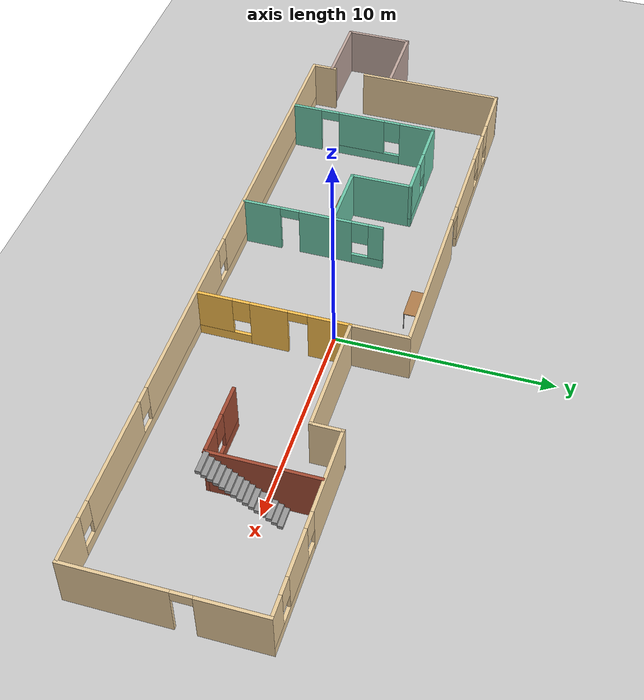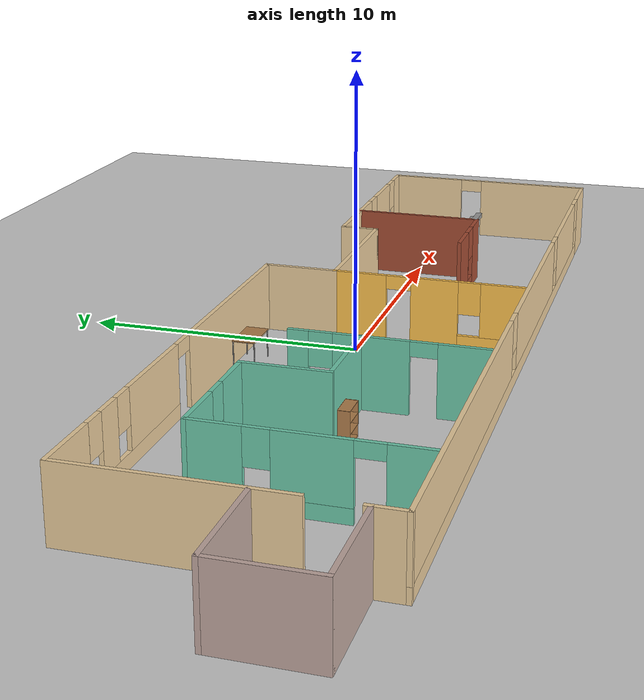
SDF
<sdf version="1.6">
 <world name="default">
  <model name="ground_plane">
   <static>1</static>
   <link name="link">
    <collision name="collision">
     <geometry><plane><normal>0 0 1</normal><size>100 100</size></plane></geometry>
     <surface>
      <contact><collide_bitmask>65535</collide_bitmask></contact>
      <friction><ode><mu>100</mu><mu2>50</mu2></ode></friction>
     </surface>
    </collision>
    <visual name="visual">
     <cast_shadows>0</cast_shadows>
     <geometry><plane><normal>0 0 1</normal><size>100 100</size></plane></geometry>
     <material>
      <script><uri>file://media/materials/scripts/gazebo.material</uri><name>Gazebo/Grey</name></script>
     </material>
    </visual>
   </link>
  </model>
  <model name="MyHome">
   <pose>-1.79948 -1.08916 0 0 -0 0</pose>
   <link name="Stairs_0">
    <visual name="Stairs_0_Visual_0">
     <pose>11.657 1.99996 0.083333 0 -0 0</pose>
     <geometry><box><size>1 0.233333 0.166667</size></box></geometry>
     <material>
      <script><uri>file://media/materials/scripts/gazebo.material</uri><name>Gazebo/Grey</name></script>
      <ambient>1 1 1 1</ambient>
     </material>
     <meta><layer>0</layer></meta>
    </visual>
    <collision name="Stairs_0_Collision_0">
     <geometry><box><size>1 0.233333 0.166667</size></box></geometry>
     <pose>11.657 1.99996 0.083333 0 -0 0</pose>
    </collision>
    <visual name="Stairs_0_Visual_1">
     <pose>11.657 1.76663 0.25 0 -0 0</pose>
     <geometry><box><size>1 0.233333 0.166667</size></box></geometry>
     <material>
      <script><uri>file://media/materials/scripts/gazebo.material</uri><name>Gazebo/Grey</name></script>
      <ambient>1 1 1 1</ambient>
     </material>
     <meta><layer>0</layer></meta>
    </visual>
    <collision name="Stairs_0_Collision_1">
     <geometry><box><size>1 0.233333 0.166667</size></box></geometry>
     <pose>11.657 1.76663 0.25 0 -0 0</pose>
    </collision>
    <visual name="Stairs_0_Visual_2">
     <pose>11.657 1.5333 0.416667 0 -0 0</pose>
     <geometry><box><size>1 0.233333 0.166667</size></box></geometry>
     <material>
      <script><uri>file://media/materials/scripts/gazebo.material</uri><name>Gazebo/Grey</name></script>
      <ambient>1 1 1 1</ambient>
     </material>
     <meta><layer>0</layer></meta>
    </visual>
    <collision name="Stairs_0_Collision_2">
     <geometry><box><size>1 0.233333 0.166667</size></box></geometry>
     <pose>11.657 1.5333 0.416667 0 -0 0</pose>
    </collision>
    <visual name="Stairs_0_Visual_3">
     <pose>11.657 1.29996 0.583333 0 -0 0</pose>
     <geometry><box><size>1 0.233333 0.166667</size></box></geometry>
     <material>
      <script><uri>file://media/materials/scripts/gazebo.material</uri><name>Gazebo/Grey</name></script>
      <ambient>1 1 1 1</ambient>
     </material>
     <meta><layer>0</layer></meta>
    </visual>
    <collision name="Stairs_0_Collision_3">
     <geometry><box><size>1 0.233333 0.166667</size></box></geometry>
     <pose>11.657 1.29996 0.583333 0 -0 0</pose>
    </collision>
    <visual name="Stairs_0_Visual_4">
     <pose>11.657 1.06663 0.75 0 -0 0</pose>
     <geometry><box><size>1 0.233333 0.166667</size></box></geometry>
     <material>
      <script><uri>file://media/materials/scripts/gazebo.material</uri><name>Gazebo/Grey</name></script>
      <ambient>1 1 1 1</ambient>
     </material>
     <meta><layer>0</layer></meta>
    </visual>
    <collision name="Stairs_0_Collision_4">
     <geometry><box><size>1 0.233333 0.166667</size></box></geometry>
     <pose>11.657 1.06663 0.75 0 -0 0</pose>
    </collision>
    <visual name="Stairs_0_Visual_5">
     <pose>11.657 0.833295 0.916667 0 -0 0</pose>
     <geometry><box><size>1 0.233333 0.166667</size></box></geometry>
     <material>
      <script><uri>file://media/materials/scripts/gazebo.material</uri><name>Gazebo/Grey</name></script>
      <ambient>1 1 1 1</ambient>
     </material>
     <meta><layer>0</layer></meta>
    </visual>
    <collision name="Stairs_0_Collision_5">
     <geometry><box><size>1 0.233333 0.166667</size></box></geometry>
     <pose>11.657 0.833295 0.916667 0 -0 0</pose>
    </collision>
    <visual name="Stairs_0_Visual_6">
     <pose>11.657 0.599962 1.08333 0 -0 0</pose>
     <geometry><box><size>1 0.233333 0.166667</size></box></geometry>
     <material>
      <script><uri>file://media/materials/scripts/gazebo.material</uri><name>Gazebo/Grey</name></script>
      <ambient>1 1 1 1</ambient>
     </material>
     <meta><layer>0</layer></meta>
    </visual>
    <collision name="Stairs_0_Collision_6">
     <geometry><box><size>1 0.233333 0.166667</size></box></geometry>
     <pose>11.657 0.599962 1.08333 0 -0 0</pose>
    </collision>
    <visual name="Stairs_0_Visual_7">
     <pose>11.657 0.366628 1.25 0 -0 0</pose>
     <geometry><box><size>1 0.233333 0.166667</size></box></geometry>
     <material>
      <script><uri>file://media/materials/scripts/gazebo.material</uri><name>Gazebo/Grey</name></script>
      <ambient>1 1 1 1</ambient>
     </material>
     <meta><layer>0</layer></meta>
    </visual>
    <collision name="Stairs_0_Collision_7">
     <geometry><box><size>1 0.233333 0.166667</size></box></geometry>
     <pose>11.657 0.366628 1.25 0 -0 0</pose>
    </collision>
    <visual name="Stairs_0_Visual_8">
     <pose>11.657 0.133295 1.41667 0 -0 0</pose>
     <geometry><box><size>1 0.233333 0.166667</size></box></geometry>
     <material>
      <script><uri>file://media/materials/scripts/gazebo.material</uri><name>Gazebo/Grey</name></script>
      <ambient>1 1 1 1</ambient>
     </material>
     <meta><layer>0</layer></meta>
    </visual>
    <collision name="Stairs_0_Collision_8">
     <geometry><box><size>1 0.233333 0.166667</size></box></geometry>
     <pose>11.657 0.133295 1.41667 0 -0 0</pose>
    </collision>
    <visual name="Stairs_0_Visual_9">
     <pose>11.657 -0.100039 1.58333 0 -0 0</pose>
     <geometry><box><size>1 0.233333 0.166667</size></box></geometry>
     <material>
      <script><uri>file://media/materials/scripts/gazebo.material</uri><name>Gazebo/Grey</name></script>
      <ambient>1 1 1 1</ambient>
     </material>
     <meta><layer>0</layer></meta>
    </visual>
    <collision name="Stairs_0_Collision_9">
     <geometry><box><size>1 0.233333 0.166667</size></box></geometry>
     <pose>11.657 -0.100039 1.58333 0 -0 0</pose>
    </collision>
    <visual name="Stairs_0_Visual_10">
     <pose>11.657 -0.333372 1.75 0 -0 0</pose>
     <geometry><box><size>1 0.233333 0.166667</size></box></geometry>
     <material>
      <script><uri>file://media/materials/scripts/gazebo.material</uri><name>Gazebo/Grey</name></script>
      <ambient>1 1 1 1</ambient>
     </material>
     <meta><layer>0</layer></meta>
    </visual>
    <collision name="Stairs_0_Collision_10">
     <geometry><box><size>1 0.233333 0.166667</size></box></geometry>
     <pose>11.657 -0.333372 1.75 0 -0 0</pose>
    </collision>
    <visual name="Stairs_0_Visual_11">
     <pose>11.657 -0.566705 1.91667 0 -0 0</pose>
     <geometry><box><size>1 0.233333 0.166667</size></box></geometry>
     <material>
      <script><uri>file://media/materials/scripts/gazebo.material</uri><name>Gazebo/Grey</name></script>
      <ambient>1 1 1 1</ambient>
     </material>
     <meta><layer>0</layer></meta>
    </visual>
    <collision name="Stairs_0_Collision_11">
     <geometry><box><size>1 0.233333 0.166667</size></box></geometry>
     <pose>11.657 -0.566705 1.91667 0 -0 0</pose>
    </collision>
    <visual name="Stairs_0_Visual_12">
     <pose>11.657 -0.800039 2.08333 0 -0 0</pose>
     <geometry><box><size>1 0.233333 0.166667</size></box></geometry>
     <material>
      <script><uri>file://media/materials/scripts/gazebo.material</uri><name>Gazebo/Grey</name></script>
      <ambient>1 1 1 1</ambient>
     </material>
     <meta><layer>0</layer></meta>
    </visual>
    <collision name="Stairs_0_Collision_12">
     <geometry><box><size>1 0.233333 0.166667</size></box></geometry>
     <pose>11.657 -0.800039 2.08333 0 -0 0</pose>
    </collision>
    <visual name="Stairs_0_Visual_13">
     <pose>11.657 -1.03337 2.25 0 -0 0</pose>
     <geometry><box><size>1 0.233333 0.166667</size></box></geometry>
     <material>
      <script><uri>file://media/materials/scripts/gazebo.material</uri><name>Gazebo/Grey</name></script>
      <ambient>1 1 1 1</ambient>
     </material>
     <meta><layer>0</layer></meta>
    </visual>
    <collision name="Stairs_0_Collision_13">
     <geometry><box><size>1 0.233333 0.166667</size></box></geometry>
     <pose>11.657 -1.03337 2.25 0 -0 0</pose>
    </collision>
    <visual name="Stairs_0_Visual_14">
     <pose>11.657 -1.2667 2.41667 0 -0 0</pose>
     <geometry><box><size>1 0.233333 0.166667</size></box></geometry>
     <material>
      <script><uri>file://media/materials/scripts/gazebo.material</uri><name>Gazebo/Grey</name></script>
      <ambient>1 1 1 1</ambient>
     </material>
     <meta><layer>0</layer></meta>
    </visual>
    <collision name="Stairs_0_Collision_14">
     <geometry><box><size>1 0.233333 0.166667</size></box></geometry>
     <pose>11.657 -1.2667 2.41667 0 -0 0</pose>
    </collision>
   </link>
   <link name="Wall_0">
    <collision name="Wall_0_Collision">
     <geometry><box><size>7 0.15 2.5</size></box></geometry>
     <pose>0 0 1.25 0 -0 0</pose>
    </collision>
    <visual name="Wall_0_Visual">
     <pose>0 0 1.25 0 -0 0</pose>
     <geometry><box><size>7 0.15 2.5</size></box></geometry>
     <material>
      <script><uri>file://media/materials/scripts/gazebo.material</uri><name>Gazebo/Grey</name></script>
      <ambient>0.921569 0.807843 0.615686 1</ambient>
     </material>
     <meta><layer>0</layer></meta>
    </visual>
    <pose>-14.0694 1.375 0 0 -0 1.5708</pose>
   </link>
   <link name="Wall_1">
    <pose>-5.51941 4.8 0 0 -0 0</pose>
    <visual name="Wall_1_Visual_0">
     <pose>-7.41094 0 1.25 0 -0 0</pose>
     <geometry><box><size>2.42812 0.15 2.5</size></box></geometry>
     <material>
      <script><uri>file://media/materials/scripts/gazebo.material</uri><name>Gazebo/Grey</name></script>
      <ambient>0.921569 0.807843 0.615686 1</ambient>
     </material>
     <meta><layer>0</layer></meta>
    </visual>
    <collision name="Wall_1_Collision_0">
     <geometry><box><size>2.42812 0.15 2.5</size></box></geometry>
     <pose>-7.41094 0 1.25 0 -0 0</pose>
    </collision>
    <visual name="Wall_1_Visual_1">
     <pose>4.75926 0 1.25 0 -0 0</pose>
     <geometry><box><size>7.73147 0.15 2.5</size></box></geometry>
     <material>
      <script><uri>file://media/materials/scripts/gazebo.material</uri><name>Gazebo/Grey</name></script>
      <ambient>0.921569 0.807843 0.615686 1</ambient>
     </material>
     <meta><layer>0</layer></meta>
    </visual>
    <collision name="Wall_1_Collision_1">
     <geometry><box><size>7.73147 0.15 2.5</size></box></geometry>
     <pose>4.75926 0 1.25 0 -0 0</pose>
    </collision>
    <visual name="Wall_1_Visual_2">
     <pose>-3.10168 0 0.25 0 -0 0</pose>
     <geometry><box><size>6.19041 0.15 0.5</size></box></geometry>
     <material>
      <script><uri>file://media/materials/scripts/gazebo.material</uri><name>Gazebo/Grey</name></script>
      <ambient>0.921569 0.807843 0.615686 1</ambient>
     </material>
     <meta><layer>0</layer></meta>
    </visual>
    <collision name="Wall_1_Collision_2">
     <geometry><box><size>6.19041 0.15 0.5</size></box></geometry>
     <pose>-3.10168 0 0.25 0 -0 0</pose>
    </collision>
    <visual name="Wall_1_Visual_3">
     <pose>-4.89447 0 1.5 0 -0 0</pose>
     <geometry><box><size>1.00482 0.15 2</size></box></geometry>
     <material>
      <script><uri>file://media/materials/scripts/gazebo.material</uri><name>Gazebo/Grey</name></script>
      <ambient>0.921569 0.807843 0.615686 1</ambient>
     </material>
     <meta><layer>0</layer></meta>
    </visual>
    <collision name="Wall_1_Collision_3">
     <geometry><box><size>1.00482 0.15 2</size></box></geometry>
     <pose>-4.89447 0 1.5 0 -0 0</pose>
    </collision>
    <visual name="Wall_1_Visual_4">
     <pose>-1.79926 0 1.5 0 -0 0</pose>
     <geometry><box><size>3.58558 0.15 2</size></box></geometry>
     <material>
      <script><uri>file://media/materials/scripts/gazebo.material</uri><name>Gazebo/Grey</name></script>
      <ambient>0.921569 0.807843 0.615686 1</ambient>
     </material>
     <meta><layer>0</layer></meta>
    </visual>
    <collision name="Wall_1_Collision_4">
     <geometry><box><size>3.58558 0.15 2</size></box></geometry>
     <pose>-1.79926 0 1.5 0 -0 0</pose>
    </collision>
    <visual name="Wall_1_Visual_5">
     <pose>-5.79688 0 1.9 0 -0 0</pose>
     <geometry><box><size>0.8 0.15 1.2</size></box></geometry>
     <material>
      <script><uri>file://media/materials/scripts/gazebo.material</uri><name>Gazebo/Grey</name></script>
      <ambient>0.921569 0.807843 0.615686 1</ambient>
     </material>
     <meta><layer>0</layer></meta>
    </visual>
    <collision name="Wall_1_Collision_5">
     <geometry><box><size>0.8 0.15 1.2</size></box></geometry>
     <pose>-5.79688 0 1.9 0 -0 0</pose>
    </collision>
    <visual name="Wall_1_Visual_6">
     <pose>-3.99206 0 1.9 0 -0 0</pose>
     <geometry><box><size>0.8 0.15 1.2</size></box></geometry>
     <material>
      <script><uri>file://media/materials/scripts/gazebo.material</uri><name>Gazebo/Grey</name></script>
      <ambient>0.921569 0.807843 0.615686 1</ambient>
     </material>
     <meta><layer>0</layer></meta>
    </visual>
    <collision name="Wall_1_Collision_6">
     <geometry><box><size>0.8 0.15 1.2</size></box></geometry>
     <pose>-3.99206 0 1.9 0 -0 0</pose>
    </collision>
    <visual name="Wall_1_Visual_7">
     <pose>0.443527 0 2.25 0 -0 0</pose>
     <geometry><box><size>0.9 0.15 0.5</size></box></geometry>
     <material>
      <script><uri>file://media/materials/scripts/gazebo.material</uri><name>Gazebo/Grey</name></script>
      <ambient>0.921569 0.807843 0.615686 1</ambient>
     </material>
     <meta><layer>0</layer></meta>
    </visual>
    <collision name="Wall_1_Collision_7">
     <geometry><box><size>0.9 0.15 0.5</size></box></geometry>
     <pose>0.443527 0 2.25 0 -0 0</pose>
    </collision>
   </link>
   <link name="Wall_10">
    <pose>-10.6739 -1.16442 0 0 0 -1.5708</pose>
    <visual name="Wall_10_Visual_0">
     <pose>-2.74743 0 1.25 0 -0 0</pose>
     <geometry><box><size>1.75513 0.15 2.5</size></box></geometry>
     <material>
      <script><uri>file://media/materials/scripts/gazebo.material</uri><name>Gazebo/Grey</name></script>
      <ambient>0.435294 0.796078 0.67451 1</ambient>
     </material>
     <meta><layer>0</layer></meta>
    </visual>
    <collision name="Wall_10_Collision_0">
     <geometry><box><size>1.75513 0.15 2.5</size></box></geometry>
     <pose>-2.74743 0 1.25 0 -0 0</pose>
    </collision>
    <visual name="Wall_10_Visual_1">
     <pose>2.89326 0 1.25 0 -0 0</pose>
     <geometry><box><size>1.46348 0.15 2.5</size></box></geometry>
     <material>
      <script><uri>file://media/materials/scripts/gazebo.material</uri><name>Gazebo/Grey</name></script>
      <ambient>0.435294 0.796078 0.67451 1</ambient>
     </material>
     <meta><layer>0</layer></meta>
    </visual>
    <collision name="Wall_10_Collision_1">
     <geometry><box><size>1.46348 0.15 2.5</size></box></geometry>
     <pose>2.89326 0 1.25 0 -0 0</pose>
    </collision>
    <visual name="Wall_10_Visual_2">
     <pose>-0.304173 0 0.25 0 -0 0</pose>
     <geometry><box><size>3.13138 0.15 0.5</size></box></geometry>
     <material>
      <script><uri>file://media/materials/scripts/gazebo.material</uri><name>Gazebo/Grey</name></script>
      <ambient>0.435294 0.796078 0.67451 1</ambient>
     </material>
     <meta><layer>0</layer></meta>
    </visual>
    <collision name="Wall_10_Collision_2">
     <geometry><box><size>3.13138 0.15 0.5</size></box></geometry>
     <pose>-0.304173 0 0.25 0 -0 0</pose>
    </collision>
    <visual name="Wall_10_Visual_3">
     <pose>0.095827 0 1.5 0 -0 0</pose>
     <geometry><box><size>2.33138 0.15 2</size></box></geometry>
     <material>
      <script><uri>file://media/materials/scripts/gazebo.material</uri><name>Gazebo/Grey</name></script>
      <ambient>0.435294 0.796078 0.67451 1</ambient>
     </material>
     <meta><layer>0</layer></meta>
    </visual>
    <collision name="Wall_10_Collision_3">
     <geometry><box><size>2.33138 0.15 2</size></box></geometry>
     <pose>0.095827 0 1.5 0 -0 0</pose>
    </collision>
    <visual name="Wall_10_Visual_4">
     <pose>-1.46986 0 1.9 0 -0 0</pose>
     <geometry><box><size>0.8 0.15 1.2</size></box></geometry>
     <material>
      <script><uri>file://media/materials/scripts/gazebo.material</uri><name>Gazebo/Grey</name></script>
      <ambient>0.435294 0.796078 0.67451 1</ambient>
     </material>
     <meta><layer>0</layer></meta>
    </visual>
    <collision name="Wall_10_Collision_4">
     <geometry><box><size>0.8 0.15 1.2</size></box></geometry>
     <pose>-1.46986 0 1.9 0 -0 0</pose>
    </collision>
    <visual name="Wall_10_Visual_5">
     <pose>1.71152 0 2.25 0 -0 0</pose>
     <geometry><box><size>0.9 0.15 0.5</size></box></geometry>
     <material>
      <script><uri>file://media/materials/scripts/gazebo.material</uri><name>Gazebo/Grey</name></script>
      <ambient>0.435294 0.796078 0.67451 1</ambient>
     </material>
     <meta><layer>0</layer></meta>
    </visual>
    <collision name="Wall_10_Collision_5">
     <geometry><box><size>0.9 0.15 0.5</size></box></geometry>
     <pose>1.71152 0 2.25 0 -0 0</pose>
    </collision>
   </link>
   <link name="Wall_12">
    <pose>-3.17929 -1.44194 0 0 -0 1.5708</pose>
    <visual name="Wall_12_Visual_0">
     <pose>-2.46125 0 1.25 0 -0 0</pose>
     <geometry><box><size>1.8275 0.15 2.5</size></box></geometry>
     <material>
      <script><uri>file://media/materials/scripts/gazebo.material</uri><name>Gazebo/Grey</name></script>
      <ambient>0.435294 0.796078 0.67451 1</ambient>
     </material>
     <meta><layer>0</layer></meta>
    </visual>
    <collision name="Wall_12_Collision_0">
     <geometry><box><size>1.8275 0.15 2.5</size></box></geometry>
     <pose>-2.46125 0 1.25 0 -0 0</pose>
    </collision>
    <visual name="Wall_12_Visual_1">
     <pose>0.609959 0 1.25 0 -0 0</pose>
     <geometry><box><size>2.51492 0.15 2.5</size></box></geometry>
     <material>
      <script><uri>file://media/materials/scripts/gazebo.material</uri><name>Gazebo/Grey</name></script>
      <ambient>0.435294 0.796078 0.67451 1</ambient>
     </material>
     <meta><layer>0</layer></meta>
    </visual>
    <collision name="Wall_12_Collision_1">
     <geometry><box><size>2.51492 0.15 2.5</size></box></geometry>
     <pose>0.609959 0 1.25 0 -0 0</pose>
    </collision>
    <visual name="Wall_12_Visual_2">
     <pose>2.62121 0 0.25 0 -0 0</pose>
     <geometry><box><size>1.50758 0.15 0.5</size></box></geometry>
     <material>
      <script><uri>file://media/materials/scripts/gazebo.material</uri><name>Gazebo/Grey</name></script>
      <ambient>0.435294 0.796078 0.67451 1</ambient>
     </material>
     <meta><layer>0</layer></meta>
    </visual>
    <collision name="Wall_12_Collision_2">
     <geometry><box><size>1.50758 0.15 0.5</size></box></geometry>
     <pose>2.62121 0 0.25 0 -0 0</pose>
    </collision>
    <visual name="Wall_12_Visual_3">
     <pose>3.02121 0 1.5 0 -0 0</pose>
     <geometry><box><size>0.707578 0.15 2</size></box></geometry>
     <material>
      <script><uri>file://media/materials/scripts/gazebo.material</uri><name>Gazebo/Grey</name></script>
      <ambient>0.435294 0.796078 0.67451 1</ambient>
     </material>
     <meta><layer>0</layer></meta>
    </visual>
    <collision name="Wall_12_Collision_3">
     <geometry><box><size>0.707578 0.15 2</size></box></geometry>
     <pose>3.02121 0 1.5 0 -0 0</pose>
    </collision>
    <visual name="Wall_12_Visual_4">
     <pose>2.26742 0 1.9 0 -0 0</pose>
     <geometry><box><size>0.8 0.15 1.2</size></box></geometry>
     <material>
      <script><uri>file://media/materials/scripts/gazebo.material</uri><name>Gazebo/Grey</name></script>
      <ambient>0.435294 0.796078 0.67451 1</ambient>
     </material>
     <meta><layer>0</layer></meta>
    </visual>
    <collision name="Wall_12_Collision_4">
     <geometry><box><size>0.8 0.15 1.2</size></box></geometry>
     <pose>2.26742 0 1.9 0 -0 0</pose>
    </collision>
    <visual name="Wall_12_Visual_5">
     <pose>-1.0975 0 2.25 0 -0 0</pose>
     <geometry><box><size>0.9 0.15 0.5</size></box></geometry>
     <material>
      <script><uri>file://media/materials/scripts/gazebo.material</uri><name>Gazebo/Grey</name></script>
      <ambient>0.435294 0.796078 0.67451 1</ambient>
     </material>
     <meta><layer>0</layer></meta>
    </visual>
    <collision name="Wall_12_Collision_5">
     <geometry><box><size>0.9 0.15 0.5</size></box></geometry>
     <pose>-1.0975 0 2.25 0 -0 0</pose>
    </collision>
   </link>
   <link name="Wall_14">
    <pose>3.03059 -1.225 0 0 0 -1.5708</pose>
    <visual name="Wall_14_Visual_0">
     <pose>-2.5108 0 1.25 0 -0 0</pose>
     <geometry><box><size>1.97841 0.15 2.5</size></box></geometry>
     <material>
      <script><uri>file://media/materials/scripts/gazebo.material</uri><name>Gazebo/Grey</name></script>
      <ambient>1 0.764706 0.305882 1</ambient>
     </material>
     <meta><layer>0</layer></meta>
    </visual>
    <collision name="Wall_14_Collision_0">
     <geometry><box><size>1.97841 0.15 2.5</size></box></geometry>
     <pose>-2.5108 0 1.25 0 -0 0</pose>
    </collision>
    <visual name="Wall_14_Visual_1">
     <pose>0.238195 0 1.25 0 -0 0</pose>
     <geometry><box><size>1.71958 0.15 2.5</size></box></geometry>
     <material>
      <script><uri>file://media/materials/scripts/gazebo.material</uri><name>Gazebo/Grey</name></script>
      <ambient>1 0.764706 0.305882 1</ambient>
     </material>
     <meta><layer>0</layer></meta>
    </visual>
    <collision name="Wall_14_Collision_1">
     <geometry><box><size>1.71958 0.15 2.5</size></box></geometry>
     <pose>0.238195 0 1.25 0 -0 0</pose>
    </collision>
    <visual name="Wall_14_Visual_2">
     <pose>2.29899 0 0.25 0 -0 0</pose>
     <geometry><box><size>2.40202 0.15 0.5</size></box></geometry>
     <material>
      <script><uri>file://media/materials/scripts/gazebo.material</uri><name>Gazebo/Grey</name></script>
      <ambient>1 0.764706 0.305882 1</ambient>
     </material>
     <meta><layer>0</layer></meta>
    </visual>
    <collision name="Wall_14_Collision_2">
     <geometry><box><size>2.40202 0.15 0.5</size></box></geometry>
     <pose>2.29899 0 0.25 0 -0 0</pose>
    </collision>
    <visual name="Wall_14_Visual_3">
     <pose>2.69899 0 1.5 0 -0 0</pose>
     <geometry><box><size>1.60201 0.15 2</size></box></geometry>
     <material>
      <script><uri>file://media/materials/scripts/gazebo.material</uri><name>Gazebo/Grey</name></script>
      <ambient>1 0.764706 0.305882 1</ambient>
     </material>
     <meta><layer>0</layer></meta>
    </visual>
    <collision name="Wall_14_Collision_3">
     <geometry><box><size>1.60201 0.15 2</size></box></geometry>
     <pose>2.69899 0 1.5 0 -0 0</pose>
    </collision>
    <visual name="Wall_14_Visual_4">
     <pose>1.49798 0 1.9 0 -0 0</pose>
     <geometry><box><size>0.8 0.15 1.2</size></box></geometry>
     <material>
      <script><uri>file://media/materials/scripts/gazebo.material</uri><name>Gazebo/Grey</name></script>
      <ambient>1 0.764706 0.305882 1</ambient>
     </material>
     <meta><layer>0</layer></meta>
    </visual>
    <collision name="Wall_14_Collision_4">
     <geometry><box><size>0.8 0.15 1.2</size></box></geometry>
     <pose>1.49798 0 1.9 0 -0 0</pose>
    </collision>
    <visual name="Wall_14_Visual_5">
     <pose>-1.07159 0 2.25 0 -0 0</pose>
     <geometry><box><size>0.9 0.15 0.5</size></box></geometry>
     <material>
      <script><uri>file://media/materials/scripts/gazebo.material</uri><name>Gazebo/Grey</name></script>
      <ambient>1 0.764706 0.305882 1</ambient>
     </material>
     <meta><layer>0</layer></meta>
    </visual>
    <collision name="Wall_14_Collision_5">
     <geometry><box><size>0.9 0.15 0.5</size></box></geometry>
     <pose>-1.07159 0 2.25 0 -0 0</pose>
    </collision>
   </link>
   <link name="Wall_16">
    <collision name="Wall_16_Collision">
     <geometry><box><size>5 0.15 2.5</size></box></geometry>
     <pose>0 0 1.25 0 -0 0</pose>
    </collision>
    <visual name="Wall_16_Visual">
     <pose>0 0 1.25 0 -0 0</pose>
     <geometry><box><size>5 0.15 2.5</size></box></geometry>
     <material>
      <script><uri>file://media/materials/scripts/gazebo.material</uri><name>Gazebo/Bricks</name></script>
      <ambient>1 1 1 1</ambient>
     </material>
     <meta><layer>0</layer></meta>
    </visual>
    <pose>11.1369 1.06183 0 0 0 -1.5708</pose>
   </link>
   <link name="Wall_17">
    <pose>9.46194 -1.36317 0 0 -0 3.14159</pose>
    <visual name="Wall_17_Visual_0">
     <pose>-1.14774 0 1.25 0 -0 0</pose>
     <geometry><box><size>1.20451 0.15 2.5</size></box></geometry>
     <material>
      <script><uri>file://media/materials/scripts/gazebo.material</uri><name>Gazebo/Bricks</name></script>
      <ambient>1 1 1 1</ambient>
     </material>
     <meta><layer>0</layer></meta>
    </visual>
    <collision name="Wall_17_Collision_0">
     <geometry><box><size>1.20451 0.15 2.5</size></box></geometry>
     <pose>-1.14774 0 1.25 0 -0 0</pose>
    </collision>
    <visual name="Wall_17_Visual_1">
     <pose>0.602256 0 0.25 0 -0 0</pose>
     <geometry><box><size>2.29549 0.15 0.5</size></box></geometry>
     <material>
      <script><uri>file://media/materials/scripts/gazebo.material</uri><name>Gazebo/Bricks</name></script>
      <ambient>1 1 1 1</ambient>
     </material>
     <meta><layer>0</layer></meta>
    </visual>
    <collision name="Wall_17_Collision_1">
     <geometry><box><size>2.29549 0.15 0.5</size></box></geometry>
     <pose>0.602256 0 0.25 0 -0 0</pose>
    </collision>
    <visual name="Wall_17_Visual_2">
     <pose>1.00226 0 1.5 0 -0 0</pose>
     <geometry><box><size>1.49549 0.15 2</size></box></geometry>
     <material>
      <script><uri>file://media/materials/scripts/gazebo.material</uri><name>Gazebo/Bricks</name></script>
      <ambient>1 1 1 1</ambient>
     </material>
     <meta><layer>0</layer></meta>
    </visual>
    <collision name="Wall_17_Collision_2">
     <geometry><box><size>1.49549 0.15 2</size></box></geometry>
     <pose>1.00226 0 1.5 0 -0 0</pose>
    </collision>
    <visual name="Wall_17_Visual_3">
     <pose>-0.145489 0 1.9 0 -0 0</pose>
     <geometry><box><size>0.8 0.15 1.2</size></box></geometry>
     <material>
      <script><uri>file://media/materials/scripts/gazebo.material</uri><name>Gazebo/Bricks</name></script>
      <ambient>1 1 1 1</ambient>
     </material>
     <meta><layer>0</layer></meta>
    </visual>
    <collision name="Wall_17_Collision_3">
     <geometry><box><size>0.8 0.15 1.2</size></box></geometry>
     <pose>-0.145489 0 1.9 0 -0 0</pose>
    </collision>
   </link>
   <link name="Wall_2">
    <collision name="Wall_2_Collision">
     <geometry><box><size>2.75 0.15 2.5</size></box></geometry>
     <pose>0 0 1.25 0 -0 0</pose>
    </collision>
    <visual name="Wall_2_Visual">
     <pose>0 0 1.25 0 -0 0</pose>
     <geometry><box><size>2.75 0.15 2.5</size></box></geometry>
     <material>
      <script><uri>file://media/materials/scripts/gazebo.material</uri><name>Gazebo/Grey</name></script>
      <ambient>0.921569 0.807843 0.615686 1</ambient>
     </material>
     <meta><layer>0</layer></meta>
    </visual>
    <pose>3.03059 3.5 0 0 0 -1.5708</pose>
   </link>
   <link name="Wall_21">
    <pose>-8.49889 2.38558 0 0 -0 0</pose>
    <visual name="Wall_21_Visual_0">
     <pose>-1.25007 0 1.25 0 -0 0</pose>
     <geometry><box><size>1.99986 0.15 2.5</size></box></geometry>
     <material>
      <script><uri>file://media/materials/scripts/gazebo.material</uri><name>Gazebo/Grey</name></script>
      <ambient>0.435294 0.796078 0.67451 1</ambient>
     </material>
     <meta><layer>0</layer></meta>
    </visual>
    <collision name="Wall_21_Collision_0">
     <geometry><box><size>1.99986 0.15 2.5</size></box></geometry>
     <pose>-1.25007 0 1.25 0 -0 0</pose>
    </collision>
    <visual name="Wall_21_Visual_1">
     <pose>0.999928 0 0.25 0 -0 0</pose>
     <geometry><box><size>2.50014 0.15 0.5</size></box></geometry>
     <material>
      <script><uri>file://media/materials/scripts/gazebo.material</uri><name>Gazebo/Grey</name></script>
      <ambient>0.435294 0.796078 0.67451 1</ambient>
     </material>
     <meta><layer>0</layer></meta>
    </visual>
    <collision name="Wall_21_Collision_1">
     <geometry><box><size>2.50014 0.15 0.5</size></box></geometry>
     <pose>0.999928 0 0.25 0 -0 0</pose>
    </collision>
    <visual name="Wall_21_Visual_2">
     <pose>1.39993 0 1.5 0 -0 0</pose>
     <geometry><box><size>1.70014 0.15 2</size></box></geometry>
     <material>
      <script><uri>file://media/materials/scripts/gazebo.material</uri><name>Gazebo/Grey</name></script>
      <ambient>0.435294 0.796078 0.67451 1</ambient>
     </material>
     <meta><layer>0</layer></meta>
    </visual>
    <collision name="Wall_21_Collision_2">
     <geometry><box><size>1.70014 0.15 2</size></box></geometry>
     <pose>1.39993 0 1.5 0 -0 0</pose>
    </collision>
    <visual name="Wall_21_Visual_3">
     <pose>0.149857 0 1.9 0 -0 0</pose>
     <geometry><box><size>0.8 0.15 1.2</size></box></geometry>
     <material>
      <script><uri>file://media/materials/scripts/gazebo.material</uri><name>Gazebo/Grey</name></script>
      <ambient>0.435294 0.796078 0.67451 1</ambient>
     </material>
     <meta><layer>0</layer></meta>
    </visual>
    <collision name="Wall_21_Collision_3">
     <geometry><box><size>0.8 0.15 1.2</size></box></geometry>
     <pose>0.149857 0 1.9 0 -0 0</pose>
    </collision>
   </link>
   <link name="Wall_22">
    <collision name="Wall_22_Collision">
     <geometry><box><size>3 0.15 2.5</size></box></geometry>
     <pose>0 0 1.25 0 -0 0</pose>
    </collision>
    <visual name="Wall_22_Visual">
     <pose>0 0 1.25 0 -0 0</pose>
     <geometry><box><size>3 0.15 2.5</size></box></geometry>
     <material>
      <script><uri>file://media/materials/scripts/gazebo.material</uri><name>Gazebo/Grey</name></script>
      <ambient>0.435294 0.796078 0.67451 1</ambient>
     </material>
     <meta><layer>0</layer></meta>
    </visual>
    <pose>-6.3239 0.960583 0 0 0 -1.5708</pose>
   </link>
   <link name="Wall_23">
    <collision name="Wall_23_Collision">
     <geometry><box><size>3.25 0.15 2.5</size></box></geometry>
     <pose>0 0 1.25 0 -0 0</pose>
    </collision>
    <visual name="Wall_23_Visual">
     <pose>0 0 1.25 0 -0 0</pose>
     <geometry><box><size>3.25 0.15 2.5</size></box></geometry>
     <material>
      <script><uri>file://media/materials/scripts/gazebo.material</uri><name>Gazebo/Grey</name></script>
      <ambient>0.435294 0.796078 0.67451 1</ambient>
     </material>
     <meta><layer>0</layer></meta>
    </visual>
    <pose>-4.7739 -0.464417 0 0 -0 0</pose>
   </link>
   <link name="Wall_25">
    <collision name="Wall_25_Collision">
     <geometry><box><size>3.5 0.15 2.5</size></box></geometry>
     <pose>0 0 1.25 0 -0 0</pose>
    </collision>
    <visual name="Wall_25_Visual">
     <pose>0 0 1.25 0 -0 0</pose>
     <geometry><box><size>3.5 0.15 2.5</size></box></geometry>
     <material>
      <script><uri>file://media/materials/scripts/gazebo.material</uri><name>Gazebo/Grey</name></script>
      <ambient>0.760784 0.662745 0.627451 1</ambient>
     </material>
     <meta><layer>0</layer></meta>
    </visual>
    <pose>-15.8056 -0.73462 0 0 -0 3.14159</pose>
   </link>
   <link name="Wall_26">
    <collision name="Wall_26_Collision">
     <geometry><box><size>3.25 0.15 2.5</size></box></geometry>
     <pose>0 0 1.25 0 -0 0</pose>
    </collision>
    <visual name="Wall_26_Visual">
     <pose>0 0 1.25 0 -0 0</pose>
     <geometry><box><size>3.25 0.15 2.5</size></box></geometry>
     <material>
      <script><uri>file://media/materials/scripts/gazebo.material</uri><name>Gazebo/Grey</name></script>
      <ambient>0.760784 0.662745 0.627451 1</ambient>
     </material>
     <meta><layer>0</layer></meta>
    </visual>
    <pose>-17.4806 -2.28462 0 0 0 -1.5708</pose>
   </link>
   <link name="Wall_27">
    <collision name="Wall_27_Collision">
     <geometry><box><size>3.5 0.15 2.5</size></box></geometry>
     <pose>0 0 1.25 0 -0 0</pose>
    </collision>
    <visual name="Wall_27_Visual">
     <pose>0 0 1.25 0 -0 0</pose>
     <geometry><box><size>3.5 0.15 2.5</size></box></geometry>
     <material>
      <script><uri>file://media/materials/scripts/gazebo.material</uri><name>Gazebo/Grey</name></script>
      <ambient>0.760784 0.662745 0.627451 1</ambient>
     </material>
     <meta><layer>0</layer></meta>
    </visual>
    <pose>-15.8056 -3.83462 0 0 -0 0</pose>
   </link>
   <link name="Wall_3">
    <collision name="Wall_3_Collision">
     <geometry><box><size>5.75 0.15 2.5</size></box></geometry>
     <pose>0 0 1.25 0 -0 0</pose>
    </collision>
    <visual name="Wall_3_Visual">
     <pose>0 0 1.25 0 -0 0</pose>
     <geometry><box><size>5.75 0.15 2.5</size></box></geometry>
     <material>
      <script><uri>file://media/materials/scripts/gazebo.material</uri><name>Gazebo/Grey</name></script>
      <ambient>0.921569 0.807843 0.615686 1</ambient>
     </material>
     <meta><layer>0</layer></meta>
    </visual>
    <pose>5.83059 2.2 0 0 -0 0</pose>
   </link>
   <link name="Wall_4">
    <collision name="Wall_4_Collision">
     <geometry><box><size>1.5 0.15 2.5</size></box></geometry>
     <pose>0 0 1.25 0 -0 0</pose>
    </collision>
    <visual name="Wall_4_Visual">
     <pose>0 0 1.25 0 -0 0</pose>
     <geometry><box><size>1.5 0.15 2.5</size></box></geometry>
     <material>
      <script><uri>file://media/materials/scripts/gazebo.material</uri><name>Gazebo/Grey</name></script>
      <ambient>0.921569 0.807843 0.615686 1</ambient>
     </material>
     <meta><layer>0</layer></meta>
    </visual>
    <pose>8.63059 2.875 0 0 -0 1.5708</pose>
   </link>
   <link name="Wall_5">
    <pose>13.0556 3.55 0 0 -0 0</pose>
    <visual name="Wall_5_Visual_0">
     <pose>-2.43044 0 1.25 0 -0 0</pose>
     <geometry><box><size>4.13912 0.15 2.5</size></box></geometry>
     <material>
      <script><uri>file://media/materials/scripts/gazebo.material</uri><name>Gazebo/Grey</name></script>
      <ambient>0.921569 0.807843 0.615686 1</ambient>
     </material>
     <meta><layer>0</layer></meta>
    </visual>
    <collision name="Wall_5_Collision_0">
     <geometry><box><size>4.13912 0.15 2.5</size></box></geometry>
     <pose>-2.43044 0 1.25 0 -0 0</pose>
    </collision>
    <visual name="Wall_5_Visual_1">
     <pose>2.06956 0 0.25 0 -0 0</pose>
     <geometry><box><size>4.86088 0.15 0.5</size></box></geometry>
     <material>
      <script><uri>file://media/materials/scripts/gazebo.material</uri><name>Gazebo/Grey</name></script>
      <ambient>0.921569 0.807843 0.615686 1</ambient>
     </material>
     <meta><layer>0</layer></meta>
    </visual>
    <collision name="Wall_5_Collision_1">
     <geometry><box><size>4.86088 0.15 0.5</size></box></geometry>
     <pose>2.06956 0 0.25 0 -0 0</pose>
    </collision>
    <visual name="Wall_5_Visual_2">
     <pose>1.53804 0 1.5 0 -0 0</pose>
     <geometry><box><size>2.19784 0.15 2</size></box></geometry>
     <material>
      <script><uri>file://media/materials/scripts/gazebo.material</uri><name>Gazebo/Grey</name></script>
      <ambient>0.921569 0.807843 0.615686 1</ambient>
     </material>
     <meta><layer>0</layer></meta>
    </visual>
    <collision name="Wall_5_Collision_2">
     <geometry><box><size>2.19784 0.15 2</size></box></geometry>
     <pose>1.53804 0 1.5 0 -0 0</pose>
    </collision>
    <visual name="Wall_5_Visual_3">
     <pose>3.96848 0 1.5 0 -0 0</pose>
     <geometry><box><size>1.06303 0.15 2</size></box></geometry>
     <material>
      <script><uri>file://media/materials/scripts/gazebo.material</uri><name>Gazebo/Grey</name></script>
      <ambient>0.921569 0.807843 0.615686 1</ambient>
     </material>
     <meta><layer>0</layer></meta>
    </visual>
    <collision name="Wall_5_Collision_3">
     <geometry><box><size>1.06303 0.15 2</size></box></geometry>
     <pose>3.96848 0 1.5 0 -0 0</pose>
    </collision>
    <visual name="Wall_5_Visual_4">
     <pose>0.039123 0 1.9 0 -0 0</pose>
     <geometry><box><size>0.8 0.15 1.2</size></box></geometry>
     <material>
      <script><uri>file://media/materials/scripts/gazebo.material</uri><name>Gazebo/Grey</name></script>
      <ambient>0.921569 0.807843 0.615686 1</ambient>
     </material>
     <meta><layer>0</layer></meta>
    </visual>
    <collision name="Wall_5_Collision_4">
     <geometry><box><size>0.8 0.15 1.2</size></box></geometry>
     <pose>0.039123 0 1.9 0 -0 0</pose>
    </collision>
    <visual name="Wall_5_Visual_5">
     <pose>3.03696 0 1.9 0 -0 0</pose>
     <geometry><box><size>0.8 0.15 1.2</size></box></geometry>
     <material>
      <script><uri>file://media/materials/scripts/gazebo.material</uri><name>Gazebo/Grey</name></script>
      <ambient>0.921569 0.807843 0.615686 1</ambient>
     </material>
     <meta><layer>0</layer></meta>
    </visual>
    <collision name="Wall_5_Collision_5">
     <geometry><box><size>0.8 0.15 1.2</size></box></geometry>
     <pose>3.03696 0 1.9 0 -0 0</pose>
    </collision>
   </link>
   <link name="Wall_6">
    <pose>17.4806 -0.625 0 0 0 -1.5708</pose>
    <visual name="Wall_6_Visual_0">
     <pose>-2.72345 0 1.25 0 -0 0</pose>
     <geometry><box><size>3.05309 0.15 2.5</size></box></geometry>
     <material>
      <script><uri>file://media/materials/scripts/gazebo.material</uri><name>Gazebo/Grey</name></script>
      <ambient>0.921569 0.807843 0.615686 1</ambient>
     </material>
     <meta><layer>0</layer></meta>
    </visual>
    <collision name="Wall_6_Collision_0">
     <geometry><box><size>3.05309 0.15 2.5</size></box></geometry>
     <pose>-2.72345 0 1.25 0 -0 0</pose>
    </collision>
    <visual name="Wall_6_Visual_1">
     <pose>1.97655 0 1.25 0 -0 0</pose>
     <geometry><box><size>4.54691 0.15 2.5</size></box></geometry>
     <material>
      <script><uri>file://media/materials/scripts/gazebo.material</uri><name>Gazebo/Grey</name></script>
      <ambient>0.921569 0.807843 0.615686 1</ambient>
     </material>
     <meta><layer>0</layer></meta>
    </visual>
    <collision name="Wall_6_Collision_1">
     <geometry><box><size>4.54691 0.15 2.5</size></box></geometry>
     <pose>1.97655 0 1.25 0 -0 0</pose>
    </collision>
    <visual name="Wall_6_Visual_2">
     <pose>-0.746906 0 2.25 0 -0 0</pose>
     <geometry><box><size>0.9 0.15 0.5</size></box></geometry>
     <material>
      <script><uri>file://media/materials/scripts/gazebo.material</uri><name>Gazebo/Grey</name></script>
      <ambient>0.921569 0.807843 0.615686 1</ambient>
     </material>
     <meta><layer>0</layer></meta>
    </visual>
    <collision name="Wall_6_Collision_2">
     <geometry><box><size>0.9 0.15 0.5</size></box></geometry>
     <pose>-0.746906 0 2.25 0 -0 0</pose>
    </collision>
   </link>
   <link name="Wall_7">
    <pose>1.68059 -4.8 0 0 -0 3.14159</pose>
    <visual name="Wall_7_Visual_0">
     <pose>-14.8234 0 1.25 0 -0 0</pose>
     <geometry><box><size>2.1031 0.15 2.5</size></box></geometry>
     <material>
      <script><uri>file://media/materials/scripts/gazebo.material</uri><name>Gazebo/Grey</name></script>
      <ambient>0.921569 0.807843 0.615686 1</ambient>
     </material>
     <meta><layer>0</layer></meta>
    </visual>
    <collision name="Wall_7_Collision_0">
     <geometry><box><size>2.1031 0.15 2.5</size></box></geometry>
     <pose>-14.8234 0 1.25 0 -0 0</pose>
    </collision>
    <visual name="Wall_7_Visual_1">
     <pose>1.05155 0 0.25 0 -0 0</pose>
     <geometry><box><size>29.6469 0.15 0.5</size></box></geometry>
     <material>
      <script><uri>file://media/materials/scripts/gazebo.material</uri><name>Gazebo/Grey</name></script>
      <ambient>0.921569 0.807843 0.615686 1</ambient>
     </material>
     <meta><layer>0</layer></meta>
    </visual>
    <collision name="Wall_7_Collision_1">
     <geometry><box><size>29.6469 0.15 0.5</size></box></geometry>
     <pose>1.05155 0 0.25 0 -0 0</pose>
    </collision>
    <visual name="Wall_7_Visual_2">
     <pose>-10.4199 0 1.5 0 -0 0</pose>
     <geometry><box><size>5.10391 0.15 2</size></box></geometry>
     <material>
      <script><uri>file://media/materials/scripts/gazebo.material</uri><name>Gazebo/Grey</name></script>
      <ambient>0.921569 0.807843 0.615686 1</ambient>
     </material>
     <meta><layer>0</layer></meta>
    </visual>
    <collision name="Wall_7_Collision_2">
     <geometry><box><size>5.10391 0.15 2</size></box></geometry>
     <pose>-10.4199 0 1.5 0 -0 0</pose>
    </collision>
    <visual name="Wall_7_Visual_3">
     <pose>-2.86415 0 1.5 0 -0 0</pose>
     <geometry><box><size>8.40766 0.15 2</size></box></geometry>
     <material>
      <script><uri>file://media/materials/scripts/gazebo.material</uri><name>Gazebo/Grey</name></script>
      <ambient>0.921569 0.807843 0.615686 1</ambient>
     </material>
     <meta><layer>0</layer></meta>
    </visual>
    <collision name="Wall_7_Collision_3">
     <geometry><box><size>8.40766 0.15 2</size></box></geometry>
     <pose>-2.86415 0 1.5 0 -0 0</pose>
    </collision>
    <visual name="Wall_7_Visual_4">
     <pose>9.00734 0 1.5 0 -0 0</pose>
     <geometry><box><size>13.7353 0.15 2</size></box></geometry>
     <material>
      <script><uri>file://media/materials/scripts/gazebo.material</uri><name>Gazebo/Grey</name></script>
      <ambient>0.921569 0.807843 0.615686 1</ambient>
     </material>
     <meta><layer>0</layer></meta>
    </visual>
    <collision name="Wall_7_Collision_4">
     <geometry><box><size>13.7353 0.15 2</size></box></geometry>
     <pose>9.00734 0 1.5 0 -0 0</pose>
    </collision>
    <visual name="Wall_7_Visual_5">
     <pose>-13.3719 0 1.9 0 -0 0</pose>
     <geometry><box><size>0.8 0.15 1.2</size></box></geometry>
     <material>
      <script><uri>file://media/materials/scripts/gazebo.material</uri><name>Gazebo/Grey</name></script>
      <ambient>0.921569 0.807843 0.615686 1</ambient>
     </material>
     <meta><layer>0</layer></meta>
    </visual>
    <collision name="Wall_7_Collision_5">
     <geometry><box><size>0.8 0.15 1.2</size></box></geometry>
     <pose>-13.3719 0 1.9 0 -0 0</pose>
    </collision>
    <visual name="Wall_7_Visual_6">
     <pose>-7.46798 0 1.9 0 -0 0</pose>
     <geometry><box><size>0.8 0.15 1.2</size></box></geometry>
     <material>
      <script><uri>file://media/materials/scripts/gazebo.material</uri><name>Gazebo/Grey</name></script>
      <ambient>0.921569 0.807843 0.615686 1</ambient>
     </material>
     <meta><layer>0</layer></meta>
    </visual>
    <collision name="Wall_7_Collision_6">
     <geometry><box><size>0.8 0.15 1.2</size></box></geometry>
     <pose>-7.46798 0 1.9 0 -0 0</pose>
    </collision>
    <visual name="Wall_7_Visual_7">
     <pose>1.73968 0 1.9 0 -0 0</pose>
     <geometry><box><size>0.8 0.15 1.2</size></box></geometry>
     <material>
      <script><uri>file://media/materials/scripts/gazebo.material</uri><name>Gazebo/Grey</name></script>
      <ambient>0.921569 0.807843 0.615686 1</ambient>
     </material>
     <meta><layer>0</layer></meta>
    </visual>
    <collision name="Wall_7_Collision_7">
     <geometry><box><size>0.8 0.15 1.2</size></box></geometry>
     <pose>1.73968 0 1.9 0 -0 0</pose>
    </collision>
   </link>
   <link name="Wall_8">
    <collision name="Wall_8_Collision">
     <geometry><box><size>1.25 0.15 2.5</size></box></geometry>
     <pose>0 0 1.25 0 -0 0</pose>
    </collision>
    <visual name="Wall_8_Visual">
     <pose>0 0 1.25 0 -0 0</pose>
     <geometry><box><size>1.25 0.15 2.5</size></box></geometry>
     <material>
      <script><uri>file://media/materials/scripts/gazebo.material</uri><name>Gazebo/Grey</name></script>
      <ambient>0.921569 0.807843 0.615686 1</ambient>
     </material>
     <meta><layer>0</layer></meta>
    </visual>
    <pose>-14.1194 -4.25 0 0 -0 1.5708</pose>
   </link>
   <static>1</static>
  </model>
  <model name="bookshelf">
   <static>1</static>
   <link name="link">
    <inertial><mass>1</mass></inertial>
    <collision name="back">
     <pose>0 0.005 0.6 0 -0 0</pose>
     <geometry><box><size>0.9 0.01 1.2</size></box></geometry>
    </collision>
    <visual name="visual1">
     <pose>0 0.005 0.6 0 -0 0</pose>
     <geometry><box><size>0.9 0.01 1.2</size></box></geometry>
     <material>
      <script><uri>file://media/materials/scripts/gazebo.material</uri><name>Gazebo/Wood</name></script>
     </material>
    </visual>
    <collision name="left_side">
     <pose>0.45 -0.195 0.6 0 -0 0</pose>
     <geometry><box><size>0.02 0.4 1.2</size></box></geometry>
    </collision>
    <visual name="visual2">
     <pose>0.45 -0.195 0.6 0 -0 0</pose>
     <geometry><box><size>0.02 0.4 1.2</size></box></geometry>
     <material>
      <script><uri>file://media/materials/scripts/gazebo.material</uri><name>Gazebo/Wood</name></script>
     </material>
    </visual>
    <collision name="right_side">
     <pose>-0.45 -0.195 0.6 0 -0 0</pose>
     <geometry><box><size>0.02 0.4 1.2</size></box></geometry>
    </collision>
    <visual name="visual3">
     <pose>-0.45 -0.195 0.6 0 -0 0</pose>
     <geometry><box><size>0.02 0.4 1.2</size></box></geometry>
     <material>
      <script><uri>file://media/materials/scripts/gazebo.material</uri><name>Gazebo/Wood</name></script>
     </material>
    </visual>
    <collision name="bottom">
     <pose>0 -0.195 0.03 0 -0 0</pose>
     <geometry><box><size>0.88 0.4 0.06</size></box></geometry>
    </collision>
    <visual name="visual4">
     <pose>0 -0.195 0.03 0 -0 0</pose>
     <geometry><box><size>0.88 0.4 0.06</size></box></geometry>
     <material>
      <script><uri>file://media/materials/scripts/gazebo.material</uri><name>Gazebo/Wood</name></script>
     </material>
    </visual>
    <collision name="top">
     <pose>0 -0.195 1.19 0 -0 0</pose>
     <geometry><box><size>0.88 0.4 0.02</size></box></geometry>
    </collision>
    <visual name="visual5">
     <pose>0 -0.195 1.19 0 -0 0</pose>
     <geometry><box><size>0.88 0.4 0.02</size></box></geometry>
     <material>
      <script><uri>file://media/materials/scripts/gazebo.material</uri><name>Gazebo/Wood</name></script>
     </material>
    </visual>
    <collision name="low_shelf">
     <pose>0 -0.195 0.43 0 -0 0</pose>
     <geometry><box><size>0.88 0.4 0.02</size></box></geometry>
    </collision>
    <visual name="visual6">
     <pose>0 -0.195 0.43 0 -0 0</pose>
     <geometry><box><size>0.88 0.4 0.02</size></box></geometry>
     <material>
      <script><uri>file://media/materials/scripts/gazebo.material</uri><name>Gazebo/Wood</name></script>
     </material>
    </visual>
    <collision name="high_shelf">
     <pose>0 -0.195 0.8 0 -0 0</pose>
     <geometry><box><size>0.88 0.4 0.02</size></box></geometry>
    </collision>
    <visual name="visual7">
     <pose>0 -0.195 0.8 0 -0 0</pose>
     <geometry><box><size>0.88 0.4 0.02</size></box></geometry>
     <material>
      <script><uri>file://media/materials/scripts/gazebo.material</uri><name>Gazebo/Wood</name></script>
     </material>
    </visual>
   </link>
   <pose>-7.48778 -1.69367 0 0 -0 0</pose>
  </model>
  <model name="table">
   <static>1</static>
   <link name="link">
    <collision name="surface">
     <pose>0 0 1 0 -0 0</pose>
     <geometry><box><size>1.5 0.8 0.03</size></box></geometry>
     <surface><friction><ode><mu>0.6</mu><mu2>0.6</mu2></ode></friction></surface>
    </collision>
    <visual name="visual1">
     <pose>0 0 1 0 -0 0</pose>
     <geometry><box><size>1.5 0.8 0.03</size></box></geometry>
     <material>
      <script><uri>file://media/materials/scripts/gazebo.material</uri><name>Gazebo/Wood</name></script>
     </material>
    </visual>
    <collision name="front_left_leg">
     <pose>0.68 0.38 0.5 0 -0 0</pose>
     <geometry><cylinder><radius>0.02</radius><length>1</length></cylinder></geometry>
    </collision>
    <visual name="front_left_leg">
     <pose>0.68 0.38 0.5 0 -0 0</pose>
     <geometry><cylinder><radius>0.02</radius><length>1</length></cylinder></geometry>
     <material>
      <script><uri>file://media/materials/scripts/gazebo.material</uri><name>Gazebo/Grey</name></script>
     </material>
    </visual>
    <collision name="front_right_leg">
     <pose>0.68 -0.38 0.5 0 -0 0</pose>
     <geometry><cylinder><radius>0.02</radius><length>1</length></cylinder></geometry>
    </collision>
    <visual name="front_right_leg">
     <pose>0.68 -0.38 0.5 0 -0 0</pose>
     <geometry><cylinder><radius>0.02</radius><length>1</length></cylinder></geometry>
     <material>
      <script><uri>file://media/materials/scripts/gazebo.material</uri><name>Gazebo/Grey</name></script>
     </material>
    </visual>
    <collision name="back_right_leg">
     <pose>-0.68 -0.38 0.5 0 -0 0</pose>
     <geometry><cylinder><radius>0.02</radius><length>1</length></cylinder></geometry>
    </collision>
    <visual name="back_right_leg">
     <pose>-0.68 -0.38 0.5 0 -0 0</pose>
     <geometry><cylinder><radius>0.02</radius><length>1</length></cylinder></geometry>
     <material>
      <script><uri>file://media/materials/scripts/gazebo.material</uri><name>Gazebo/Grey</name></script>
     </material>
    </visual>
    <collision name="back_left_leg">
     <pose>-0.68 0.38 0.5 0 -0 0</pose>
     <geometry><cylinder><radius>0.02</radius><length>1</length></cylinder></geometry>
    </collision>
    <visual name="back_left_leg">
     <pose>-0.68 0.38 0.5 0 -0 0</pose>
     <geometry><cylinder><radius>0.02</radius><length>1</length></cylinder></geometry>
     <material>
      <script><uri>file://media/materials/scripts/gazebo.material</uri><name>Gazebo/Grey</name></script>
     </material>
    </visual>
   </link>
   <pose>-2.15956 3.169 0 0 -0 0</pose>
  </model>
 </world>
</sdf>
